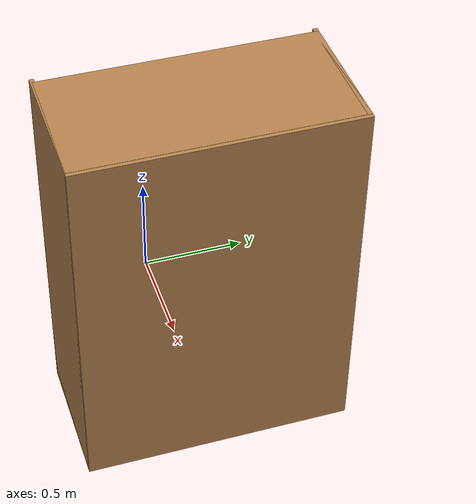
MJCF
<mujoco model="open_cabinet">
    <default>
        <default class="visual">
            <geom contype="0" conaffinity="0" group="2"/>
        </default>
        <default class="collision">
            <geom group="3"/>
        </default>
    </default>
    <asset>
        <material name="bookshelf_cover"  texuniform="false"  texture="bookshelf_cover"/>
        <texture type="2d" name="bookshelf_cover" file="assets/light-wood.png"/>
    </asset>
    <worldbody>
        <camera pos="2.245 1.745 2.438" xyaxes="-0.643 0.766 -0.000 -0.383 -0.321 0.866"/>
        <geom name="cabinet_base_a" type="box" pos="0.9 0 0.25" size="0.3 0.6 0.25" material="bookshelf_cover" class="visual"/>

        <geom name="cabinet_back" type="box" pos="1.21 0 0.84" size="0.009 0.6 0.84" material="bookshelf_cover" class="visual"/>

        <body name="drawer" pos="0.9 0 0.5">
            <geom type="box" pos="0 0 0.02" size="0.3 0.58 0.01"  mass="5" material="bookshelf_cover" class="visual"/>
            <geom type="box" pos="0.29 0 0.15" size="0.01 0.6 0.14"  material="bookshelf_cover" class="visual"/>
            <geom type="box" pos="0 0 0.02" size="0.3 0.58 0.01"  class="collision"/>
            <geom type="box" pos="0.29 0 0.15" size="0.01 0.6 0.14" class="collision"/>
        </body>

        <body name="lateral_cabinet" pos="0.9 0 0.79">
            <geom type="box" pos="0 0 0.02" size="0.3 0.6 0.01"  material="bookshelf_cover" class="visual"/>
            <geom type="box" pos="0.29 0 0.15" size="0.01 0.6 0.14"  material="bookshelf_cover" class="visual"/>
            <geom type="box" pos="0 0 0.02" size="0.3 0.6 0.01" class="collision"/>
            <geom type="box" pos="0.29 0 0.15" size="0.01 0.6 0.14" class="collision"/>
        </body>
        <body name="pulling_cabinet" pos="0.9 0 1.08">
            <geom type="box" pos="0 0 0.02" size="0.3 0.6 0.01"  material="bookshelf_cover" class="visual"/>
            <geom type="box" pos="0.29 0 0.15" size="0.01 0.6 0.14"  material="bookshelf_cover" class="visual"/>
            <geom type="box" pos="0 0 0.02" size="0.3 0.6 0.01"  class="collision"/>
            <geom type="box" pos="0.29 0 0.15" size="0.01 0.6 0.14" class="collision"/>
        </body>
        <body name="pullup_drawer" pos="0.9 0 1.37">
            <geom type="box" pos="0 0 0.02" size="0.3 0.6 0.01"  material="bookshelf_cover" class="visual"/>
            <geom type="box" pos="0.29 0 0.15" size="0.01 0.6 0.14"  material="bookshelf_cover" class="visual"/>

            <geom type="box" pos="0 0 0.02" size="0.3 0.6 0.01" class="collision"/>
            <geom type="box" pos="0.29 0 0.15" size="0.01 0.6 0.14" class="collision"/>

            <geom type="box" pos="0.01 0 0.3" size="0.29 0.6 0.01"  material="bookshelf_cover" class="visual"/>
            <geom type="box" pos="0.01 0 0.3" size="0.29 0.6 0.01" class="collision"/>
        </body>

        <geom type="box" pos="0.9 0.59 0.84" size="0.3 0.01 0.84"  material="bookshelf_cover" class="visual"/>
        <geom type="box" pos="0.9 -0.59 0.84" size="0.3 0.01 0.84"  material="bookshelf_cover" class="visual"/>

    </worldbody>
</mujoco>
